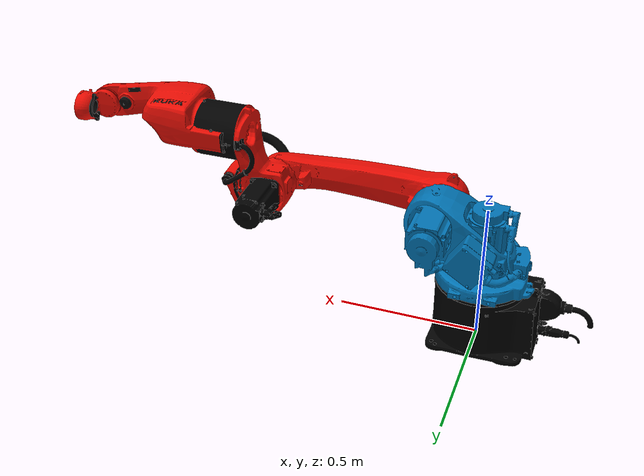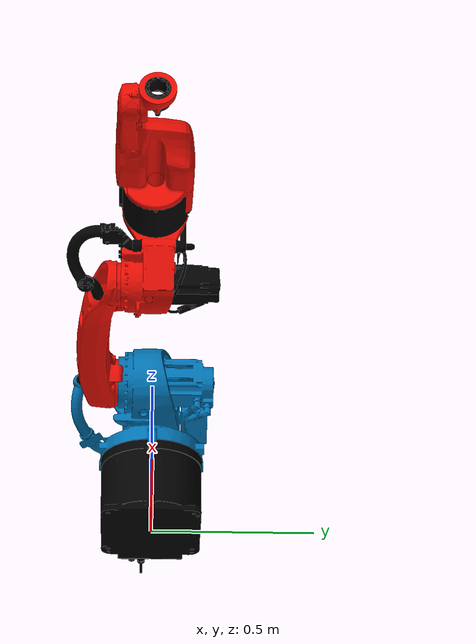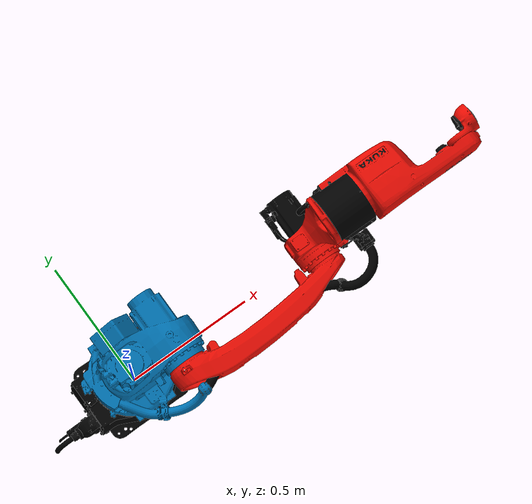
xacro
<?xml version="1.0" encoding="UTF-8"?>
<robot xmlns:xacro="http://ros.org/wiki/xacro" name="kr8_r1440_2_arc_hw">
  <!-- Import macro files  -->
  <xacro:include filename="$(find kuka_cybertech_support)/urdf/kr8_r1440_2_arc_hw_macro.xacro"/>
  <xacro:include filename="$(find kuka_cybertech_support)/urdf/kr_cybertech_ros2_control_macro.xacro"/>
  <!-- Read additional arguments  -->
  <xacro:arg name="driver_version" default="eki_rsi"/>
  <xacro:arg name="mode" default="hardware"/>
  <xacro:arg name="gpio_config" default=""/>
  <xacro:arg name="roundtrip_time" default="0"/>
  <xacro:arg name="client_ip" default="0.0.0.0"/>
  <xacro:arg name="client_port" default="59152"/>
  <xacro:arg name="mxa_client_port" default="1337"/>
  <xacro:arg name="controller_ip" default="0.0.0.0"/>
  <xacro:arg name="verify_robot_model" default="true"/>
  <xacro:arg name="prefix" default=""/>
  <xacro:arg name="x" default="0"/>
  <xacro:arg name="y" default="0"/>
  <xacro:arg name="z" default="0"/>
  <xacro:arg name="roll" default="0"/>
  <xacro:arg name="pitch" default="0"/>
  <xacro:arg name="yaw" default="0"/>
  <xacro:arg name="rsi_xml_config_file" default=""/>
  <xacro:kuka_cybertech_ros2_control name="$(arg prefix)kr8_r1440_2_arc_hw" driver_version="$(arg driver_version)" client_ip="$(arg client_ip)" client_port="$(arg client_port)" mxa_client_port="$(arg mxa_client_port)" controller_ip="$(arg controller_ip)" prefix="$(arg prefix)" mode="$(arg mode)" gpio_config="$(arg gpio_config)" roundtrip_time="$(arg roundtrip_time)" verify_robot_model="$(arg verify_robot_model)" rsi_xml_config_file="$(arg rsi_xml_config_file)">
    <ext_axes_ros2_control_joints/>
  </xacro:kuka_cybertech_ros2_control>
  <!-- world link -->
  <link name="world"/>
  <!-- robot links, joints -->
  <xacro:kuka_kr8_r1440_2_arc_hw_robot prefix="$(arg prefix)" package_name="kuka_cybertech_support"/>
  <!-- default world - base_link joint -->
  <joint name="$(arg prefix)world-base_link" type="fixed">
    <parent link="world"/>
    <child link="$(arg prefix)base_link"/>
    <origin xyz="$(arg x) $(arg y) $(arg z)" rpy="$(arg roll) $(arg pitch) $(arg yaw)"/>
  </joint>
</robot>

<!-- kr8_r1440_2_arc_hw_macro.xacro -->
<robot xmlns:xacro="http://www.ros.org/wiki/xacro" name="kr8_r1440_2_arc_hw">
  <xacro:macro name="kuka_kr8_r1440_2_arc_hw_robot" params="prefix package_name">
    <link name="${prefix}base"/>
    <link name="${prefix}base_link">
      <collision>
        <geometry>
          <mesh filename="package://${package_name}/meshes/kr8_r1440_2_arc_hw/collision/base_link.stl"/>
        </geometry>
        <origin rpy="0.0 -0.0 0.0" xyz="0.0 0.0 0.0"/>
      </collision>
      <inertial>
        <inertia ixx="0.634936098084501" ixy="0.0" ixz="0.0" iyy="0.574327624629521" iyz="0.0" izz="0.797352921130989"/>
        <mass value="3.9073E1"/>
        <origin rpy="1.5765789871151783 -1.1449982906754197 -3.0082299274510214" xyz="-0.0391127265724671 -0.00287744987121777 0.127104284495583"/>
      </inertial>
      <visual>
        <geometry>
          <mesh filename="package://${package_name}/meshes/kr8_r1440_2_arc_hw/visual/base_link.dae"/>
        </geometry>
        <origin rpy="0.0 -0.0 0.0" xyz="0.0 0.0 0.0"/>
      </visual>
    </link>
    <link name="${prefix}flange"/>
    <link name="${prefix}link_1">
      <collision>
        <geometry>
          <mesh filename="package://${package_name}/meshes/kr8_r1440_2_arc_hw/collision/link_1.stl"/>
        </geometry>
        <origin rpy="-3.141592653589793 0.0 -0.0" xyz="0.0 -3.08610993385133e-17 0.252"/>
      </collision>
      <inertial>
        <inertia ixx="1.3384390674061" ixy="0.0" ixz="0.0" iyy="0.820843546793389" iyz="0.0" izz="1.55573380436597"/>
        <mass value="6.74E1"/>
        <origin rpy="-2.611001108715522 -0.03173312820752263 1.5444134681106099" xyz="0.058529821958457 -0.00186593471810089 -0.0944010979228487"/>
      </inertial>
      <visual>
        <geometry>
          <mesh filename="package://${package_name}/meshes/kr8_r1440_2_arc_hw/visual/link_1.dae"/>
        </geometry>
        <origin rpy="-3.141592653589793 0.0 -0.0" xyz="0.0 -3.08610993385133e-17 0.252"/>
      </visual>
    </link>
    <link name="${prefix}link_2">
      <collision>
        <geometry>
          <mesh filename="package://${package_name}/meshes/kr8_r1440_2_arc_hw/collision/link_2.stl"/>
        </geometry>
        <origin rpy="1.5707963267948968 -0.0 1.5707963267948966" xyz="-0.42500000000000004 -0.16999999999999998 0.07050000000000006"/>
      </collision>
      <inertial>
        <inertia ixx="0.133415452651944" ixy="0.0" ixz="0.0" iyy="1.95552612430245" iyz="0.0" izz="1.97067029897357"/>
        <mass value="2.918E1"/>
        <origin rpy="-1.6670480415146225 -0.004290635595312187 -3.1327049524977033" xyz="0.25209468814256303 -1.3653187114462002E-4 -0.057425496915695706"/>
      </inertial>
      <visual>
        <geometry>
          <mesh filename="package://${package_name}/meshes/kr8_r1440_2_arc_hw/visual/link_2.dae"/>
        </geometry>
        <origin rpy="1.5707963267948968 -0.0 1.5707963267948966" xyz="-0.42500000000000004 -0.16999999999999998 0.07050000000000006"/>
      </visual>
    </link>
    <link name="${prefix}link_3">
      <collision>
        <geometry>
          <mesh filename="package://${package_name}/meshes/kr8_r1440_2_arc_hw/collision/link_3.stl"/>
        </geometry>
        <origin rpy="1.5707963267948968 -0.0 -0.0" xyz="-0.17000000000000004 1.0350000000000001 0.06450000000000007"/>
      </collision>
      <inertial>
        <inertia ixx="0.330361034287379" ixy="0.0" ixz="0.0" iyy="0.162163937844031" iyz="0.0" izz="0.364943046156523"/>
        <mass value="2.8122241932E1"/>
        <origin rpy="2.661878927999282 -1.4378263809443101 -2.3153742264684842" xyz="0.032917429925941696 -0.061379270592104705 0.061522795924462005"/>
      </inertial>
      <visual>
        <geometry>
          <mesh filename="package://${package_name}/meshes/kr8_r1440_2_arc_hw/visual/link_3.dae"/>
        </geometry>
        <origin rpy="1.5707963267948968 -0.0 -0.0" xyz="-0.17000000000000004 1.0350000000000001 0.06450000000000007"/>
      </visual>
    </link>
    <link name="${prefix}link_4">
      <collision>
        <geometry>
          <mesh filename="package://${package_name}/meshes/kr8_r1440_2_arc_hw/collision/link_4.stl"/>
        </geometry>
        <origin rpy="1.8369701987210297e-16 1.5707963267948966 0.0" xyz="-1.245 3.4524881442055596e-17 0.2786"/>
      </collision>
      <inertial>
        <inertia ixx="0.0871004263139792" ixy="0.0" ixz="0.0" iyy="0.423989758120616" iyz="0.0" izz="0.438213821139602"/>
        <mass value="1.7669E1"/>
        <origin rpy="-1.7454228688897344 -1.32867117730729 1.803224725135394" xyz="0.022565736600826298 -0.0072297894617692005 -0.184333759692116"/>
      </inertial>
      <visual>
        <geometry>
          <mesh filename="package://${package_name}/meshes/kr8_r1440_2_arc_hw/visual/link_4.dae"/>
        </geometry>
        <origin rpy="1.8369701987210297e-16 1.5707963267948966 0.0" xyz="-1.245 3.4524881442055596e-17 0.2786"/>
      </visual>
    </link>
    <link name="${prefix}link_5">
      <collision>
        <geometry>
          <mesh filename="package://${package_name}/meshes/kr8_r1440_2_arc_hw/collision/link_5.stl"/>
        </geometry>
        <origin rpy="1.5707963267948968 -3.749399456654644e-33 -6.123233995736766e-17" xyz="-0.7969999999999999 1.245 0.04150000000000002"/>
      </collision>
      <inertial>
        <inertia ixx="0.00312551229307196" ixy="0.0" ixz="0.0" iyy="0.00538500355946596" iyz="0.0" izz="0.00604948414746207"/>
        <mass value="2.75E0"/>
        <origin rpy="-3.129494530217552 -0.8407287104018004 -0.006304756244332258" xyz="0.013000000000000001 0.0 0.004"/>
      </inertial>
      <visual>
        <geometry>
          <mesh filename="package://${package_name}/meshes/kr8_r1440_2_arc_hw/visual/link_5.dae"/>
        </geometry>
        <origin rpy="1.5707963267948968 -3.749399456654644e-33 -6.123233995736766e-17" xyz="-0.7969999999999999 1.245 0.04150000000000002"/>
      </visual>
    </link>
    <link name="${prefix}link_6">
      <collision>
        <geometry>
          <mesh filename="package://${package_name}/meshes/kr8_r1440_2_arc_hw/collision/link_6.stl"/>
        </geometry>
        <origin rpy="1.2246467991473532e-16 1.5707963267948966 0.0" xyz="-1.245 -4.976860183030259e-17 0.8634999999999999"/>
      </collision>
      <inertial>
        <inertia ixx="5.29E-4" ixy="0.0" ixz="0.0" iyy="5.29E-4" iyz="0.0" izz="7.89E-4"/>
        <mass value="8.0E-1"/>
        <origin rpy="0.0 -0.0 0.0" xyz="0.0 0.0 0.012"/>
      </inertial>
      <visual>
        <geometry>
          <mesh filename="package://${package_name}/meshes/kr8_r1440_2_arc_hw/visual/link_6.dae"/>
        </geometry>
        <origin rpy="1.2246467991473532e-16 1.5707963267948966 0.0" xyz="-1.245 -4.976860183030259e-17 0.8634999999999999"/>
      </visual>
    </link>
    <link name="${prefix}tool0"/>
    <joint name="${prefix}base_link-base" type="fixed">
      <child link="${prefix}base"/>
      <parent link="${prefix}base_link"/>
    </joint>
    <joint name="${prefix}joint_1" type="revolute">
      <axis xyz="0.0 0.0 1.0"/>
      <child link="${prefix}link_1"/>
      <limit effort="1.296E3" lower="-2.967059725E0" upper="2.967059725E0" velocity="3.83972435438753E0"/>
      <origin rpy="3.141592653589793 -0.0 0.0" xyz="0.0 0.0 0.252"/>
      <parent link="${prefix}base_link"/>
    </joint>
    <joint name="${prefix}joint_2" type="revolute">
      <axis xyz="0.0 0.0 1.0"/>
      <child link="${prefix}link_2"/>
      <limit effort="1.27558721617737E3" lower="-3.2288591125E0" upper="1.1344640125E0" velocity="3.66519142918809E0"/>
      <origin rpy="1.5707963267948966 -0.0 0.0" xyz="0.17 0.07050000000000001 -0.17300000000000001"/>
      <parent link="${prefix}link_1"/>
    </joint>
    <joint name="${prefix}joint_3" type="revolute">
      <axis xyz="0.0 0.0 1.0"/>
      <child link="${prefix}link_3"/>
      <limit effort="2.48615274672424E2" lower="-2.0769418075E0" upper="3.1590459425E0" velocity="4.71238898038469E0"/>
      <origin rpy="0.0 -0.0 0.0" xyz="0.61 0.0 0.006"/>
      <parent link="${prefix}link_2"/>
    </joint>
    <joint name="${prefix}joint_4" type="revolute">
      <axis xyz="0.0 0.0 1.0"/>
      <child link="${prefix}link_4"/>
      <limit effort="4.40443155739045E1" lower="-2.8797932625E0" upper="2.8797932625E0" velocity="7.50491578357562E0"/>
      <origin rpy="1.5707963267948966 -0.0 -1.5707963267948966" xyz="0.1086 -0.21 0.0645"/>
      <parent link="${prefix}link_3"/>
    </joint>
    <joint name="${prefix}joint_5" type="revolute">
      <axis xyz="0.0 0.0 1.0"/>
      <child link="${prefix}link_5"/>
      <limit effort="3.43574585837906E1" lower="-2.0071286375E0" upper="2.44346095E0" velocity="7.50491578357562E0"/>
      <origin rpy="0.0 1.5707963267948966 1.5707963267948966" xyz="0.0 -0.0415 -0.5184"/>
      <parent link="${prefix}link_4"/>
    </joint>
    <joint name="${prefix}joint_6" type="revolute">
      <axis xyz="0.0 0.0 1.0"/>
      <child link="${prefix}link_6"/>
      <limit effort="3.66552E1" lower="-6.108652375E0" upper="6.108652375E0" velocity="1.09706410125358E1"/>
      <origin rpy="1.5707963267948966 -0.0 -1.5707963267948966" xyz="0.0665 0.0 0.0415"/>
      <parent link="${prefix}link_5"/>
    </joint>
    <joint name="${prefix}link6-flange" type="fixed">
      <child link="${prefix}flange"/>
      <origin rpy="0.0 1.5707963267948966 0.0" xyz="0.0 0.0 -0.0135"/>
      <parent link="${prefix}link_6"/>
    </joint>
    <joint name="${prefix}link6-tool0" type="fixed">
      <child link="${prefix}tool0"/>
      <origin rpy="3.141592653589793 1.2246467991473532E-16 3.141592653589793" xyz="0.0 0.0 -0.0135"/>
      <parent link="${prefix}link_6"/>
    </joint>
  </xacro:macro>
</robot>
